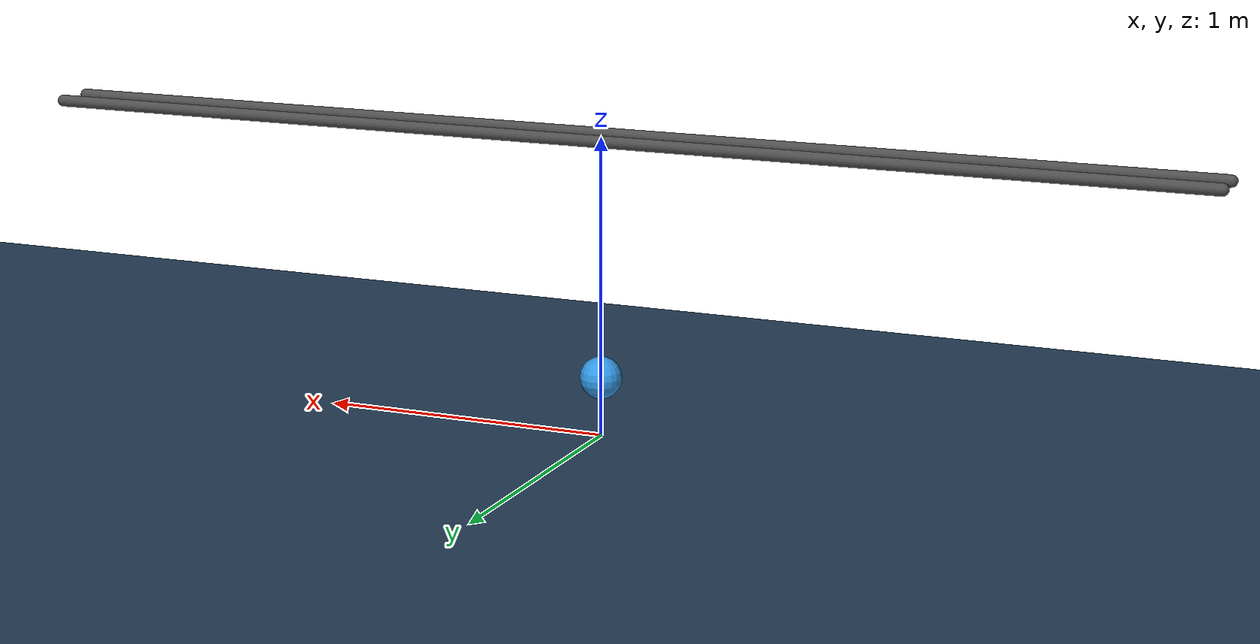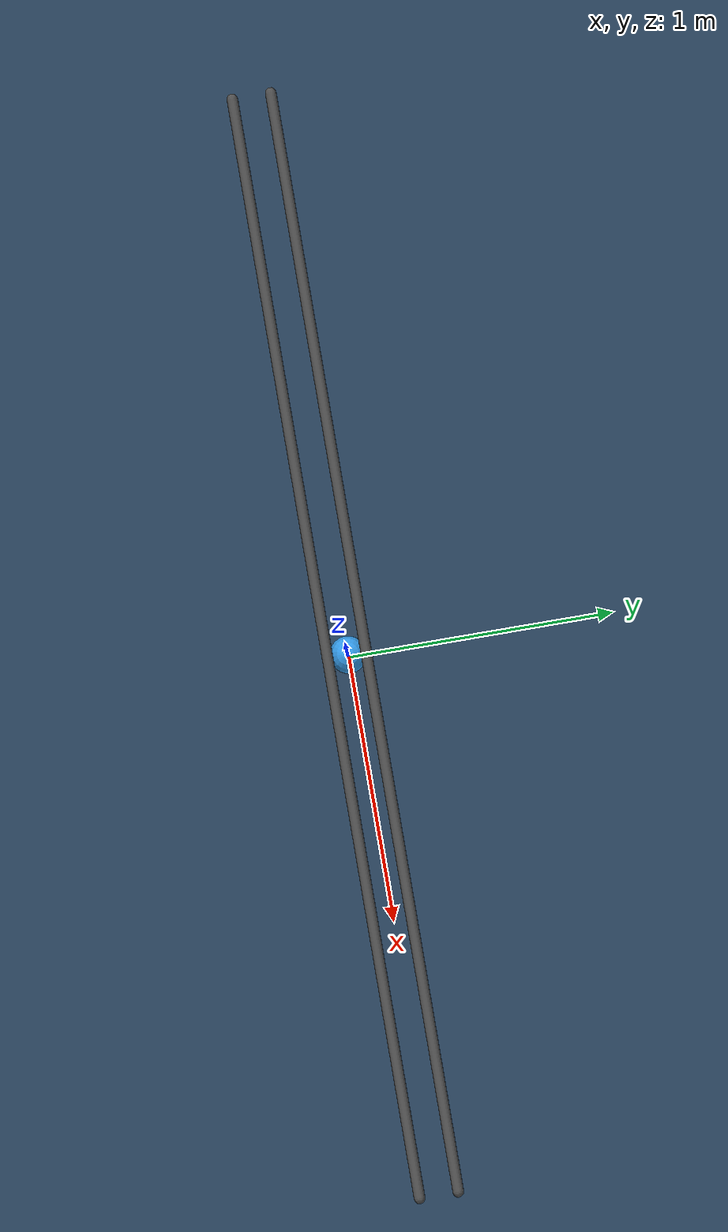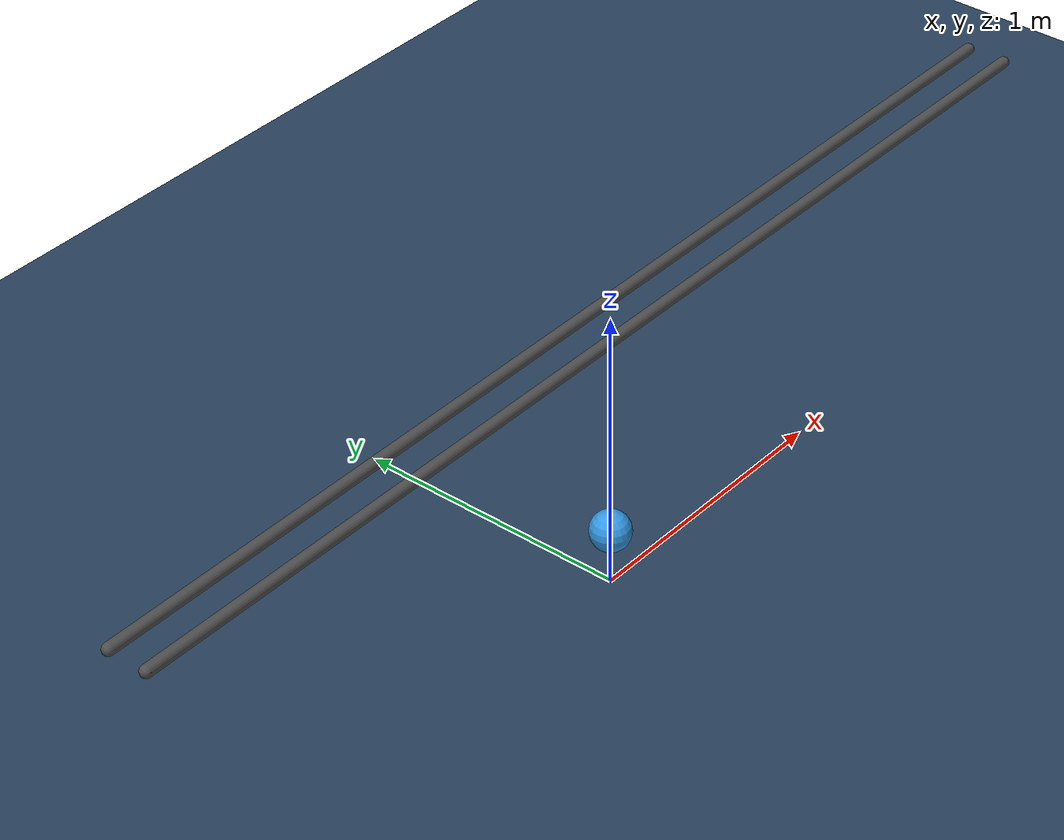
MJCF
<mujoco model="cartpole">
  <option timestep="0.01"/>

  <default>
    <default class="pole">
      <joint type="hinge" axis="0 1 0" damping="2e-6"/>
      <geom type="capsule" fromto="0 0 0 0 0 1" size="0.045" material="pole" mass=".1"/>
    </default>
  </default>

  <asset>
    <texture name="grid" type="2d" builtin="checker" rgb1=".1 .2 .3" rgb2=".2 .3 .4" width="300" height="300"/>
    <material name="grid" texture="grid" texrepeat="8 8" reflectance=".2"/>
    <material name="cart" rgba=".7 .1 .1 1"/>
    <material name="pole" rgba=".1 .5 .8 1"/>
    <material name="decoration" rgba=".3 .3 .3 1"/>
  </asset>

  <worldbody>
    <light name="light" pos="0 0 6"/>
    <camera name="fixed" pos="0 -4 1" zaxis="0 -1 0"/>
    <camera name="lookatcart" mode="targetbody" target="cart" pos="0 -2 2"/>
    <geom name="floor" pos="0 0 -.05" size="4 4 .2" type="plane" material="grid"/>
    <geom name="rail1" type="capsule" pos="0 .07 1" zaxis="1 0 0" size="0.02 2" material="decoration"/>
    <geom name="rail2" type="capsule" pos="0 -.07 1" zaxis="1 0 0" size="0.02 2" material="decoration"/>
    <body name="sphere" pos="0 0 0.2">
      <joint name="tx" type="slide" axis="1 0 0" range="-2 2" damping="1"/>
      <joint name="ty" type="slide" axis="0 1 0" range="-2 2" damping="1"/>
      <joint name="tz" type="slide" axis="0 0 1" range="0.05 2" damping="1"/>
      <geom name="sphere_geom" type="sphere" size="0.07" mass="1.0" rgba="0.2 0.6 0.9 1"/>
    </body>
  </worldbody>
</mujoco>
